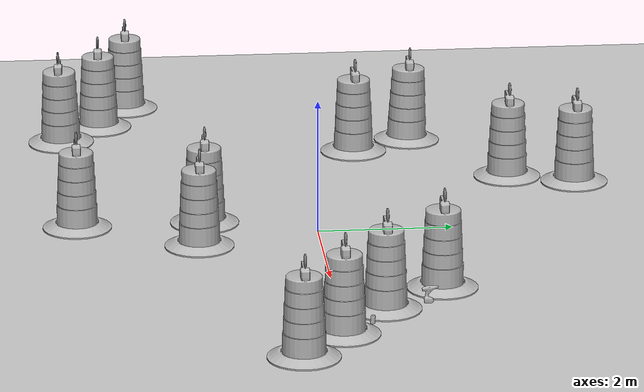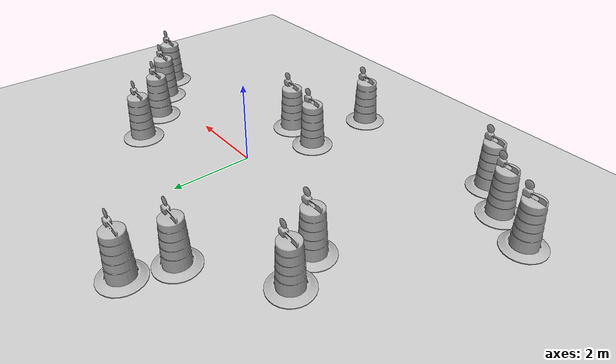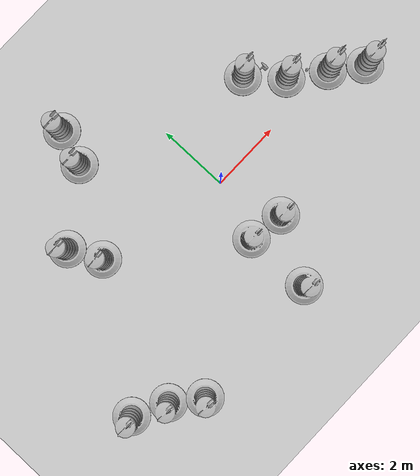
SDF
<sdf version="1.7">
 <world name="default">
  <light name="sun" type="directional">
   <pose>0 0 10 0 -0 0</pose>
   <diffuse>0.8 0.8 0.8 1</diffuse>
   <specular>0.2 0.2 0.2 1</specular>
   <attenuation>
    <range>1000</range>
    <constant>0.9</constant>
    <linear>0.01</linear>
    <quadratic>0.001</quadratic>
   </attenuation>
   <direction>-0.5 0.1 -0.9</direction>
   <spot><inner_angle>0</inner_angle><outer_angle>0</outer_angle><falloff>0</falloff></spot>
  </light>
  <model name="ground_plane">
   <static>1</static>
   <link name="link">
    <collision name="collision">
     <geometry><plane><normal>0 0 1</normal><size>100 100</size></plane></geometry>
     <surface>
      <contact><collide_bitmask>65535</collide_bitmask></contact>
      <friction><ode><mu>100</mu><mu2>50</mu2></ode></friction>
     </surface>
    </collision>
    <visual name="visual">
     <cast_shadows>0</cast_shadows>
     <geometry><plane><normal>0 0 1</normal><size>100 100</size></plane></geometry>
     <material>
      <script><uri>file://media/materials/scripts/gazebo.material</uri><name>Gazebo/Grey</name></script>
     </material>
    </visual>
   </link>
  </model>
  <gravity>0 0 -9.8</gravity>
  <magnetic_field>6e-06 2.3e-05 -4.2e-05</magnetic_field>
  <atmosphere type="adiabatic"/>
  <physics type="ode">
   <max_step_size>0.001</max_step_size>
   <real_time_factor>1</real_time_factor>
   <real_time_update_rate>1000</real_time_update_rate>
  </physics>
  <scene><ambient>0.4 0.4 0.4 1</ambient><background>0.7 0.7 0.7 1</background><shadows>1</shadows></scene>
  <audio><device>default</device></audio>
  <spherical_coordinates>
   <surface_model>EARTH_WGS84</surface_model>
   <latitude_deg>0</latitude_deg>
   <longitude_deg>0</longitude_deg>
   <elevation>0</elevation>
   <heading_deg>0</heading_deg>
  </spherical_coordinates>
  <model name="Construction Barrel">
   <link name="link">
    <inertial>
     <pose>0 0 0.4 0 -0 0</pose>
     <mass>500</mass>
     <inertia><ixx>51.2096</ixx><iyy>51.2096</iyy><izz>25</izz><ixy>0</ixy><ixz>0</ixz><iyz>0</iyz></inertia>
    </inertial>
    <collision name="collision">
     <geometry><mesh><uri>model://construction_barrel/meshes/construction_barrel.dae</uri></mesh></geometry>
    </collision>
    <visual name="visual">
     <geometry><mesh><uri>model://construction_barrel/meshes/construction_barrel.dae</uri></mesh></geometry>
    </visual>
   </link>
   <pose>-4.09341 1.77721 0.014448 -0.022696 -0.017405 -0.014215</pose>
  </model>
  <model name="Construction Barrel_0">
   <link name="link">
    <inertial>
     <pose>0 0 0.4 0 -0 0</pose>
     <mass>500</mass>
     <inertia><ixx>51.2096</ixx><iyy>51.2096</iyy><izz>25</izz><ixy>0</ixy><ixz>0</ixz><iyz>0</iyz></inertia>
    </inertial>
    <collision name="collision">
     <geometry><mesh><uri>model://construction_barrel/meshes/construction_barrel.dae</uri></mesh></geometry>
    </collision>
    <visual name="visual">
     <geometry><mesh><uri>model://construction_barrel/meshes/construction_barrel.dae</uri></mesh></geometry>
    </visual>
   </link>
   <pose>-1.89379 4.098 0 0 0 -2.5e-05</pose>
  </model>
  <model name="Construction Barrel_1">
   <link name="link">
    <inertial>
     <pose>0 0 0.4 0 -0 0</pose>
     <mass>500</mass>
     <inertia><ixx>51.2096</ixx><iyy>51.2096</iyy><izz>25</izz><ixy>0</ixy><ixz>0</ixz><iyz>0</iyz></inertia>
    </inertial>
    <collision name="collision">
     <geometry><mesh><uri>model://construction_barrel/meshes/construction_barrel.dae</uri></mesh></geometry>
    </collision>
    <visual name="visual">
     <geometry><mesh><uri>model://construction_barrel/meshes/construction_barrel.dae</uri></mesh></geometry>
    </visual>
   </link>
   <pose>-2.23604 3.11455 0 0 0 -2.4e-05</pose>
  </model>
  <model name="Construction Barrel_2">
   <link name="link">
    <inertial>
     <pose>0 0 0.4 0 -0 0</pose>
     <mass>500</mass>
     <inertia><ixx>51.2096</ixx><iyy>51.2096</iyy><izz>25</izz><ixy>0</ixy><ixz>0</ixz><iyz>0</iyz></inertia>
    </inertial>
    <collision name="collision">
     <geometry><mesh><uri>model://construction_barrel/meshes/construction_barrel.dae</uri></mesh></geometry>
    </collision>
    <visual name="visual">
     <geometry><mesh><uri>model://construction_barrel/meshes/construction_barrel.dae</uri></mesh></geometry>
    </visual>
   </link>
   <pose>-3.64806 0.897033 -1e-06 5e-06 -2e-06 0.045347</pose>
  </model>
  <model name="Construction Barrel_3">
   <link name="link">
    <inertial>
     <pose>0 0 0.4 0 -0 0</pose>
     <mass>500</mass>
     <inertia><ixx>51.2096</ixx><iyy>51.2096</iyy><izz>25</izz><ixy>0</ixy><ixz>0</ixz><iyz>0</iyz></inertia>
    </inertial>
    <collision name="collision">
     <geometry><mesh><uri>model://construction_barrel/meshes/construction_barrel.dae</uri></mesh></geometry>
    </collision>
    <visual name="visual">
     <geometry><mesh><uri>model://construction_barrel/meshes/construction_barrel.dae</uri></mesh></geometry>
    </visual>
   </link>
   <pose>-0.519112 -1.633 0 0 0 -2.2e-05</pose>
  </model>
  <model name="Construction Barrel_4">
   <link name="link">
    <inertial>
     <pose>0 0 0.4 0 -0 0</pose>
     <mass>500</mass>
     <inertia><ixx>51.2096</ixx><iyy>51.2096</iyy><izz>25</izz><ixy>0</ixy><ixz>0</ixz><iyz>0</iyz></inertia>
    </inertial>
    <collision name="collision">
     <geometry><mesh><uri>model://construction_barrel/meshes/construction_barrel.dae</uri></mesh></geometry>
    </collision>
    <visual name="visual">
     <geometry><mesh><uri>model://construction_barrel/meshes/construction_barrel.dae</uri></mesh></geometry>
    </visual>
   </link>
   <pose>0.487116 -1.77532 0 0 0 -2.1e-05</pose>
  </model>
  <model name="Construction Barrel_5">
   <link name="link">
    <inertial>
     <pose>0 0 0.4 0 -0 0</pose>
     <mass>500</mass>
     <inertia><ixx>51.2096</ixx><iyy>51.2096</iyy><izz>25</izz><ixy>0</ixy><ixz>0</ixz><iyz>0</iyz></inertia>
    </inertial>
    <collision name="collision">
     <geometry><mesh><uri>model://construction_barrel/meshes/construction_barrel.dae</uri></mesh></geometry>
    </collision>
    <visual name="visual">
     <geometry><mesh><uri>model://construction_barrel/meshes/construction_barrel.dae</uri></mesh></geometry>
    </visual>
   </link>
   <pose>-0.468813 -3.51778 0 0 0 -1.9e-05</pose>
  </model>
  <model name="Construction Barrel_6">
   <link name="link">
    <inertial>
     <pose>0 0 0.4 0 -0 0</pose>
     <mass>500</mass>
     <inertia><ixx>51.2096</ixx><iyy>51.2096</iyy><izz>25</izz><ixy>0</ixy><ixz>0</ixz><iyz>0</iyz></inertia>
    </inertial>
    <collision name="collision">
     <geometry><mesh><uri>model://construction_barrel/meshes/construction_barrel.dae</uri></mesh></geometry>
    </collision>
    <visual name="visual">
     <geometry><mesh><uri>model://construction_barrel/meshes/construction_barrel.dae</uri></mesh></geometry>
    </visual>
   </link>
   <pose>-6.13334 -2.53073 -0 0 -0 -1.9e-05</pose>
  </model>
  <model name="Construction Barrel_7">
   <link name="link">
    <inertial>
     <pose>0 0 0.4 0 -0 0</pose>
     <mass>500</mass>
     <inertia><ixx>51.2096</ixx><iyy>51.2096</iyy><izz>25</izz><ixy>0</ixy><ixz>0</ixz><iyz>0</iyz></inertia>
    </inertial>
    <collision name="collision">
     <geometry><mesh><uri>model://construction_barrel/meshes/construction_barrel.dae</uri></mesh></geometry>
    </collision>
    <visual name="visual">
     <geometry><mesh><uri>model://construction_barrel/meshes/construction_barrel.dae</uri></mesh></geometry>
    </visual>
   </link>
   <pose>-5.20296 -2.99825 -8e-06 1.6e-05 2.8e-05 -0.034703</pose>
  </model>
  <model name="Construction Barrel_8">
   <link name="link">
    <inertial>
     <pose>0 0 0.4 0 -0 0</pose>
     <mass>500</mass>
     <inertia><ixx>51.2096</ixx><iyy>51.2096</iyy><izz>25</izz><ixy>0</ixy><ixz>0</ixz><iyz>0</iyz></inertia>
    </inertial>
    <collision name="collision">
     <geometry><mesh><uri>model://construction_barrel/meshes/construction_barrel.dae</uri></mesh></geometry>
    </collision>
    <visual name="visual">
     <geometry><mesh><uri>model://construction_barrel/meshes/construction_barrel.dae</uri></mesh></geometry>
    </visual>
   </link>
   <pose>-4.44444 -3.62045 0.01507 0.011426 0.027565 -0.075963</pose>
  </model>
  <model name="Construction Barrel_9">
   <link name="link">
    <inertial>
     <pose>0 0 0.4 0 -0 0</pose>
     <mass>500</mass>
     <inertia><ixx>51.2096</ixx><iyy>51.2096</iyy><izz>25</izz><ixy>0</ixy><ixz>0</ixz><iyz>0</iyz></inertia>
    </inertial>
    <collision name="collision">
     <geometry><mesh><uri>model://construction_barrel/meshes/construction_barrel.dae</uri></mesh></geometry>
    </collision>
    <visual name="visual">
     <geometry><mesh><uri>model://construction_barrel/meshes/construction_barrel.dae</uri></mesh></geometry>
    </visual>
   </link>
   <pose>2.53566 1.53903 0 0 0 -1.4e-05</pose>
  </model>
  <model name="Construction Barrel_10">
   <link name="link">
    <inertial>
     <pose>0 0 0.4 0 -0 0</pose>
     <mass>500</mass>
     <inertia><ixx>51.2096</ixx><iyy>51.2096</iyy><izz>25</izz><ixy>0</ixy><ixz>0</ixz><iyz>0</iyz></inertia>
    </inertial>
    <collision name="collision">
     <geometry><mesh><uri>model://construction_barrel/meshes/construction_barrel.dae</uri></mesh></geometry>
    </collision>
    <visual name="visual">
     <geometry><mesh><uri>model://construction_barrel/meshes/construction_barrel.dae</uri></mesh></geometry>
    </visual>
   </link>
   <pose>3.31178 0.647418 -2e-06 0 6e-06 -1.1e-05</pose>
  </model>
  <model name="Construction Barrel_11">
   <link name="link">
    <inertial>
     <pose>0 0 0.4 0 -0 0</pose>
     <mass>500</mass>
     <inertia><ixx>51.2096</ixx><iyy>51.2096</iyy><izz>25</izz><ixy>0</ixy><ixz>0</ixz><iyz>0</iyz></inertia>
    </inertial>
    <collision name="collision">
     <geometry><mesh><uri>model://construction_barrel/meshes/construction_barrel.dae</uri></mesh></geometry>
    </collision>
    <visual name="visual">
     <geometry><mesh><uri>model://construction_barrel/meshes/construction_barrel.dae</uri></mesh></geometry>
    </visual>
   </link>
   <pose>4.24151 -0.029883 0 1e-06 1e-06 -9e-06</pose>
  </model>
  <model name="Construction Barrel_12">
   <link name="link">
    <inertial>
     <pose>0 0 0.4 0 -0 0</pose>
     <mass>500</mass>
     <inertia><ixx>51.2096</ixx><iyy>51.2096</iyy><izz>25</izz><ixy>0</ixy><ixz>0</ixz><iyz>0</iyz></inertia>
    </inertial>
    <collision name="collision">
     <geometry><mesh><uri>model://construction_barrel/meshes/construction_barrel.dae</uri></mesh></geometry>
    </collision>
    <visual name="visual">
     <geometry><mesh><uri>model://construction_barrel/meshes/construction_barrel.dae</uri></mesh></geometry>
    </visual>
   </link>
   <pose>5.05409 -0.656075 -4e-06 -5e-06 -7e-06 -8e-06</pose>
  </model>
  <model name="coke_can">
   <link name="link">
    <inertial>
     <pose>0 0 0.06 0 -0 0</pose>
     <mass>0.39</mass>
     <inertia>
      <ixx>0.00055575</ixx>
      <ixy>0</ixy>
      <ixz>0</ixz>
      <iyy>0.00055575</iyy>
      <iyz>0</iyz>
      <izz>0.0001755</izz>
     </inertia>
    </inertial>
    <collision name="collision">
     <pose>0.003937 0.004724 -0.18 0 -0 0</pose>
     <geometry><mesh><uri>model://coke_can/meshes/coke_can.dae</uri></mesh></geometry>
     <surface>
      <friction><ode><mu>1</mu><mu2>1</mu2></ode></friction>
      <contact><ode><kp>1e+07</kp><kd>1</kd><min_depth>0.001</min_depth><max_vel>0.1</max_vel></ode></contact>
     </surface>
    </collision>
    <visual name="visual">
     <pose>0.003937 0.004724 -0.18 0 -0 0</pose>
     <geometry><mesh><uri>model://coke_can/meshes/coke_can.dae</uri></mesh></geometry>
    </visual>
   </link>
   <pose>3.86076 0.404112 -0.00274 -0.059918 0.004412 -0.000534</pose>
  </model>
  <model name="drill">
   <link name="link">
    <inertial>
     <pose>-0.00637 -0.008 0.13254 0 -0 0</pose>
     <inertia>
      <ixx>0.0133113</ixx>
      <ixy>-0.00030365</ixy>
      <ixz>-0.00034148</ixz>
      <iyy>0.0115766</iyy>
      <iyz>0.00088073</iyz>
      <izz>0.00378028</izz>
     </inertia>
     <mass>1.50252</mass>
    </inertial>
    <collision name="collision">
     <pose>0 0 -0.09 0 -0 0</pose>
     <geometry><mesh><uri>model://cordless_drill/meshes/cordless_drill.stl</uri></mesh></geometry>
     <surface><contact><ode><max_vel>0.1</max_vel><min_depth>0.001</min_depth></ode></contact></surface>
    </collision>
    <visual name="visual">
     <pose>0 0 -0.09 0 -0 0</pose>
     <geometry><mesh><uri>model://cordless_drill/meshes/cordless_drill.dae</uri></mesh></geometry>
    </visual>
   </link>
   <pose>3.11802 1.28268 -0.002184 -0.000203 -0.002663 -0.000521</pose>
  </model>
 </world>
</sdf>
